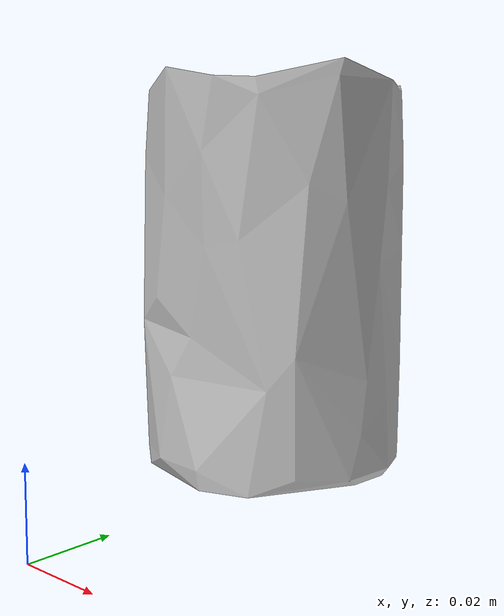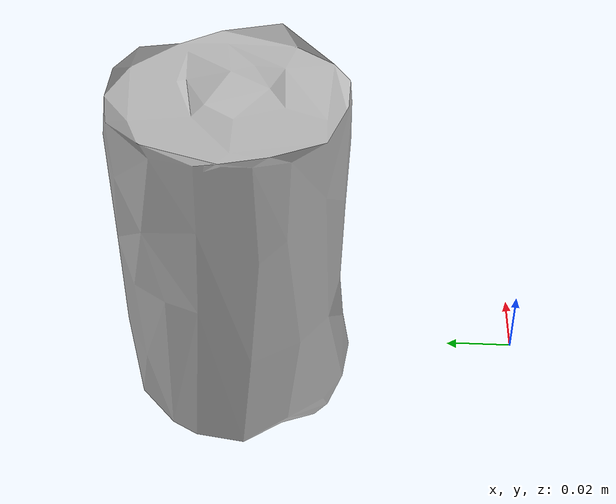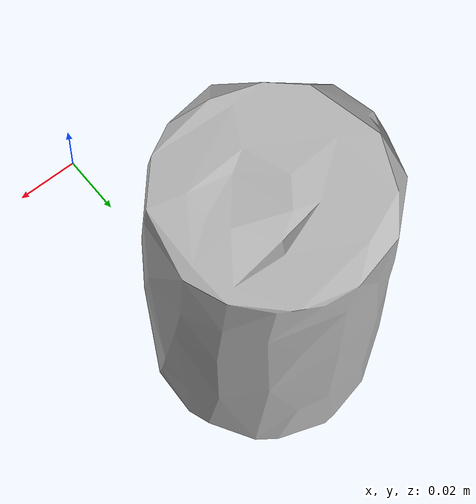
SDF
<?xml version='1.0'?>
<sdf version="1.4">
  <model name="005_tomato_soup_can">
    <static>false</static>
    <link name="link">
      <inertial>
        <pose>-0.009303661848266384 0.0839831689648817 0.051405401973478454 3.1408053856046454 -7.509432960070136e-05 -1.7959218958533412</pose>
        <mass>0.03573511431355661</mass>
        <inertia>
          <ixx>4.0589665859755145e-05</ixx>
          <ixy>2.060907266762993e-21</ixy>
          <ixz>1.5093382002030957e-21</ixz>
          <iyy>4.0511638969758125e-05</iyy>
          <iyz>-3.738845591417239e-22</iyz>
          <izz>2.001199108452657e-05</izz>
        </inertia>
      </inertial>
      <collision name="collision">
        <geometry>
          <mesh>
            <!-- Use a downsampled mesh for collisions -->
            <uri>model:///005_tomato_soup_can/005_tomato_soup_can_250_collision.stl</uri>
	        </mesh>
        </geometry>
        <surface>
      </surface>
      </collision>
      <visual name="visual">
        <geometry>
          <mesh>
            <uri>model:///005_tomato_soup_can/textured.obj</uri>
	        </mesh>
        </geometry>
        <material>
          <script>
            <uri>model:///005_tomato_soup_can/005_tomato_soup_can.material</uri>
            <name>005_tomato_soup_can</name>
          </script>
        </material>
      </visual>
    </link>
  </model>
</sdf>
